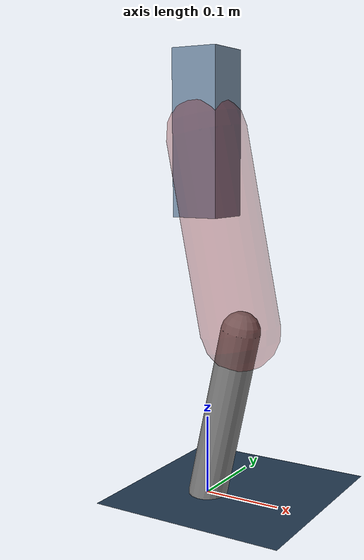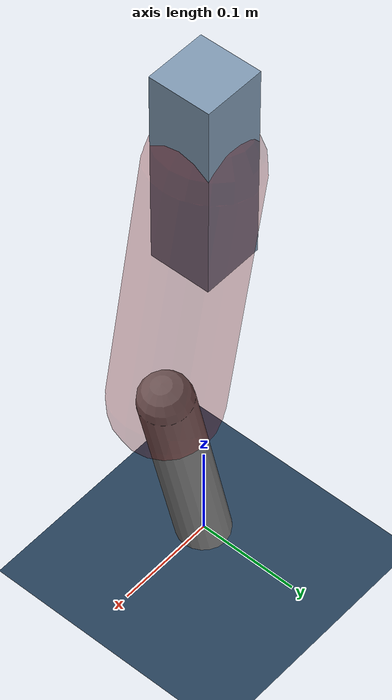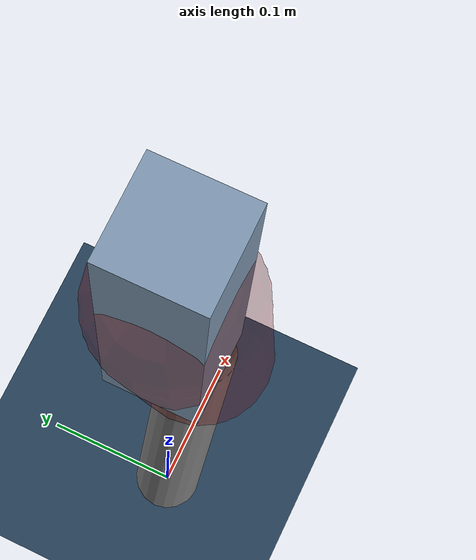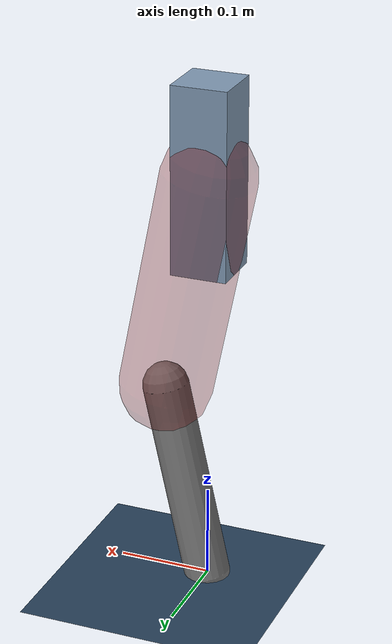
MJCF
<mujoco model="Hopper2D">
	<compiler inertiafromgeom="true" angle="radian" />
	<option timestep="0.001" integrator="implicit" cone="elliptic" solver="Newton" tolerance="1e-10" />

	<default>
		<geom contype="1" conaffinity="1" condim="3" friction="2 0.005 0.0001" solref="0.005 1" />
		<joint limited="true" damping="0.1" />
	</default>

	<asset>
		<texture name="skybox" type="skybox" builtin="gradient" rgb1=".4 .6 .8" rgb2="0 0 0" width="800" height="800" />
		<texture name="grid" type="2d" builtin="checker" rgb1=".1 .2 .3" rgb2=".2 .3 .4" width="300" height="300" mark="edge" markrgb=".2 .3 .4" />
		<material name="ground" texture="grid" texrepeat="1 1" texuniform="true" reflectance="0.1" />
		<material name="leg" rgba="0.5 0.6 0.7 1" />
	</asset>

	<worldbody>

		<geom name="floor" type="plane" size="5 5 0.25" material="ground" />

		<light directional="false" diffuse="0.8 0.8 0.8" specular="0.3 0.3 0.3" pos="0 0 2" dir="0 0 -1" />
		<light mode="targetbodycom" target="base" directional="false" diffuse="0.8 0.8 0.8" specular="0.3 0.3 0.3" pos="0 0 2" dir="0 0 -1" />

		<camera name="fixed" pos="0 -2 1" xyaxes="1 0 0 0 0 1" />
		<camera name="tracking" mode="trackcom" pos="0 -3 1" />

		<body name="root" pos="0 0 0.45637855009811534">
			<joint name="slide_x" type="slide" axis="1 0 0" range="-100 100" />
			<joint name="slide_z" type="slide" axis="0 0 1" range="0 10" />

			<body name="base" pos="0 0 0">
				<geom name="torso" type="box" size="0.03 0.03 0.1" mass="2.262" material="leg" />

				<body name="link1" pos="0 0 0" euler="0 1.3731198081929235 0">
					<joint type="hinge" axis="0 -1 0" pos="0 0 0" name="hinge1" limited="true" range="-3.14 3.14" stiffness="0" damping="0.1" />
					<geom name="thigh" type="capsule" fromto="0 0 0 0.24427425243759204 0 0" size="0.05" rgba="0.5 0 0 0.3" mass="0.8416130563377393" />

					<body name="link2" pos="0.24427425243759204 0 0" euler="0 0.4153872930835291 0">
						<joint type="hinge" axis="0 -1 0" pos="0 0 0" name="hinge2" limited="true" range="-3.14 3.14" stiffness="0" damping="0.1" />
						<geom name="shank" type="capsule" fromto="0 0 0 0.22210429766052328 0 0" size="0.025" mass="0.419393867894471" />

					</body>
				</body>
			</body>
		</body>
	</worldbody>

	<actuator>
		<motor name="torque1" joint="hinge1" ctrlrange="-59.434432969521275 59.434432969521275" ctrllimited="true" gear="1" />
		<motor name="torque2" joint="hinge2" ctrlrange="-94.4956845340513 94.4956845340513" ctrllimited="true" gear="1" />
	</actuator>
</mujoco>
